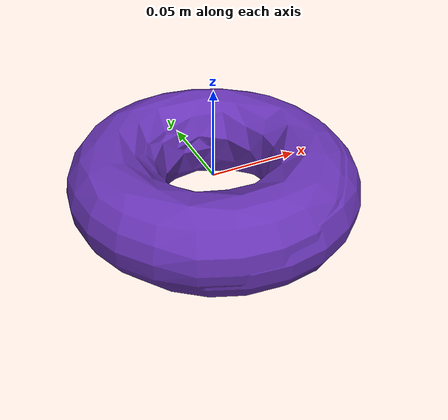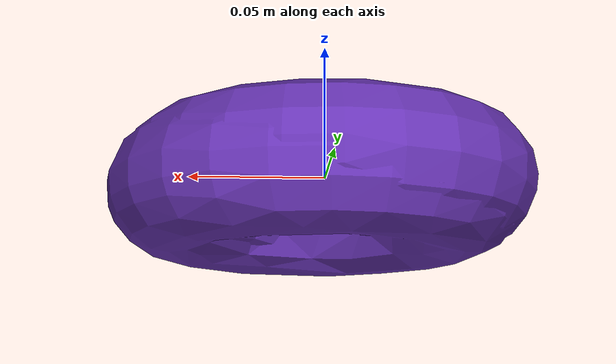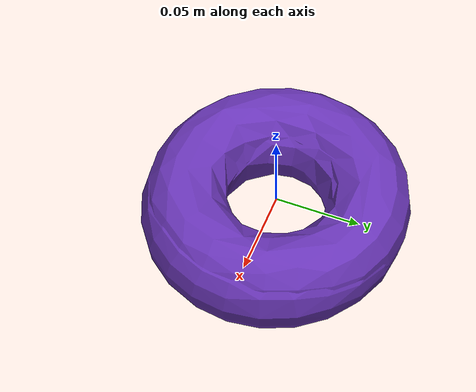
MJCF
<mujoco model="top_watertight_tiny">
  <default>
    <default group="2" type="mesh" contype="0" conaffinity="0">
      <geom group="2" type="mesh" contype="0" conaffinity="0"/>
    </default>
    <default group="3" type="mesh">
      <geom group="3" type="mesh"/>
    </default>
  </default>
  <asset>
    <mesh file="top_watertight_tiny.obj"/>
    <mesh file="top_watertight_tiny_collision_0.obj"/>
    <mesh file="top_watertight_tiny_collision_1.obj"/>
    <mesh file="top_watertight_tiny_collision_2.obj"/>
    <mesh file="top_watertight_tiny_collision_3.obj"/>
    <mesh file="top_watertight_tiny_collision_4.obj"/>
    <mesh file="top_watertight_tiny_collision_5.obj"/>
    <mesh file="top_watertight_tiny_collision_6.obj"/>
    <mesh file="top_watertight_tiny_collision_7.obj"/>
    <mesh file="top_watertight_tiny_collision_8.obj"/>
    <mesh file="top_watertight_tiny_collision_9.obj"/>
    <mesh file="top_watertight_tiny_collision_10.obj"/>
    <mesh file="top_watertight_tiny_collision_11.obj"/>
  </asset>
  <worldbody>
    <body name="top_watertight_tiny">
      <freejoint/>
      <geom mesh="top_watertight_tiny" group="2" type="mesh" rgba="0.4 0.2 0.7 1" contype="0" conaffinity="0"/>
      <geom mesh="top_watertight_tiny_collision_0" rgba="0.08811430790516217 0.12339860482188791 0.47577295589662283 1" group="3" type="mesh"/>
      <geom mesh="top_watertight_tiny_collision_1" rgba="0.372243808155311 0.8464404307414509 0.5654960948330926 1" group="3" type="mesh"/>
      <geom mesh="top_watertight_tiny_collision_2" rgba="0.9943698500975391 0.22714247205565996 0.07487862925606703 1" group="3" type="mesh"/>
      <geom mesh="top_watertight_tiny_collision_3" rgba="0.8202367422898946 0.36560987770725584 0.15337676958286772 1" group="3" type="mesh"/>
      <geom mesh="top_watertight_tiny_collision_4" rgba="0.25334165187367663 0.2314326497584307 0.4068305845136836 1" group="3" type="mesh"/>
      <geom mesh="top_watertight_tiny_collision_5" rgba="0.21817149995954854 0.7032027650504371 0.6803002712934698 1" group="3" type="mesh"/>
      <geom mesh="top_watertight_tiny_collision_6" rgba="0.5004708180891362 0.9175752258751998 0.5350030052562958 1" group="3" type="mesh"/>
      <geom mesh="top_watertight_tiny_collision_7" rgba="0.2378589918348476 0.38695016421404604 0.5999473818852383 1" group="3" type="mesh"/>
      <geom mesh="top_watertight_tiny_collision_8" rgba="0.35767157147312356 0.7958232422083752 0.034204480984761365 1" group="3" type="mesh"/>
      <geom mesh="top_watertight_tiny_collision_9" rgba="0.642175011553417 0.19370183559379506 0.2074896778446882 1" group="3" type="mesh"/>
      <geom mesh="top_watertight_tiny_collision_10" rgba="0.7710057545046174 0.867190050128233 0.38698079045184997 1" group="3" type="mesh"/>
      <geom mesh="top_watertight_tiny_collision_11" rgba="0.9156471568720932 0.8339721398337829 0.874112784043603 1" group="3" type="mesh"/>
    </body>
  </worldbody>
</mujoco>
